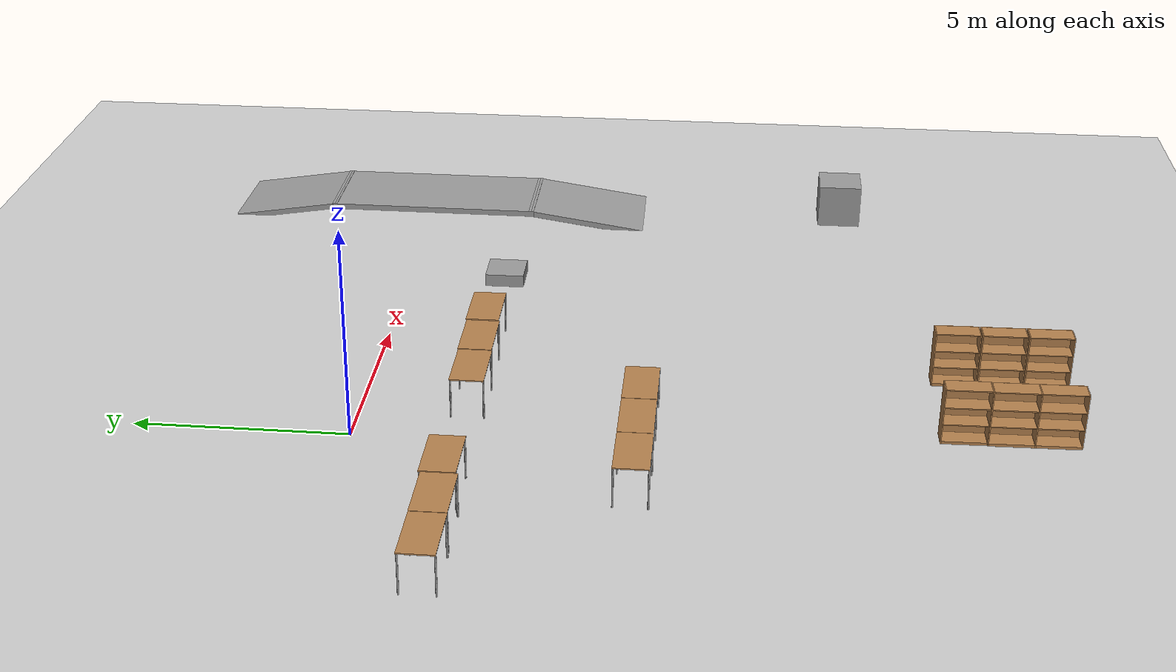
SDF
<sdf version="1.6">
 <world name="default">
  <model name="ground_plane">
   <static>1</static>
   <link name="link">
    <collision name="collision">
     <geometry><plane><normal>0 0 1</normal><size>100 100</size></plane></geometry>
     <surface><friction><ode><mu>100</mu><mu2>50</mu2></ode></friction></surface>
    </collision>
    <visual name="visual">
     <cast_shadows>0</cast_shadows>
     <geometry><plane><normal>0 0 1</normal><size>100 100</size></plane></geometry>
     <material>
      <script><uri>file://media/materials/scripts/gazebo.material</uri><name>Gazebo/Grey</name></script>
     </material>
    </visual>
   </link>
  </model>
  <model name="table">
   <static>1</static>
   <link name="link">
    <collision name="surface">
     <pose>0 0 1 0 -0 0</pose>
     <geometry><box><size>1.5 0.8 0.03</size></box></geometry>
     <surface><friction><ode><mu>0.6</mu><mu2>0.6</mu2></ode></friction></surface>
    </collision>
    <visual name="visual1">
     <pose>0 0 1 0 -0 0</pose>
     <geometry><box><size>1.5 0.8 0.03</size></box></geometry>
     <material>
      <script><uri>file://media/materials/scripts/gazebo.material</uri><name>Gazebo/Wood</name></script>
     </material>
    </visual>
    <collision name="front_left_leg">
     <pose>0.68 0.38 0.5 0 -0 0</pose>
     <geometry><cylinder><radius>0.02</radius><length>1</length></cylinder></geometry>
    </collision>
    <visual name="front_left_leg">
     <pose>0.68 0.38 0.5 0 -0 0</pose>
     <geometry><cylinder><radius>0.02</radius><length>1</length></cylinder></geometry>
     <material>
      <script><uri>file://media/materials/scripts/gazebo.material</uri><name>Gazebo/Grey</name></script>
     </material>
    </visual>
    <collision name="front_right_leg">
     <pose>0.68 -0.38 0.5 0 -0 0</pose>
     <geometry><cylinder><radius>0.02</radius><length>1</length></cylinder></geometry>
    </collision>
    <visual name="front_right_leg">
     <pose>0.68 -0.38 0.5 0 -0 0</pose>
     <geometry><cylinder><radius>0.02</radius><length>1</length></cylinder></geometry>
     <material>
      <script><uri>file://media/materials/scripts/gazebo.material</uri><name>Gazebo/Grey</name></script>
     </material>
    </visual>
    <collision name="back_right_leg">
     <pose>-0.68 -0.38 0.5 0 -0 0</pose>
     <geometry><cylinder><radius>0.02</radius><length>1</length></cylinder></geometry>
    </collision>
    <visual name="back_right_leg">
     <pose>-0.68 -0.38 0.5 0 -0 0</pose>
     <geometry><cylinder><radius>0.02</radius><length>1</length></cylinder></geometry>
     <material>
      <script><uri>file://media/materials/scripts/gazebo.material</uri><name>Gazebo/Grey</name></script>
     </material>
    </visual>
    <collision name="back_left_leg">
     <pose>-0.68 0.38 0.5 0 -0 0</pose>
     <geometry><cylinder><radius>0.02</radius><length>1</length></cylinder></geometry>
    </collision>
    <visual name="back_left_leg">
     <pose>-0.68 0.38 0.5 0 -0 0</pose>
     <geometry><cylinder><radius>0.02</radius><length>1</length></cylinder></geometry>
     <material>
      <script><uri>file://media/materials/scripts/gazebo.material</uri><name>Gazebo/Grey</name></script>
     </material>
    </visual>
   </link>
   <pose>-1.77581 -6.45658 0 0 -0 0</pose>
  </model>
  <model name="table_0">
   <static>1</static>
   <link name="link">
    <collision name="surface">
     <pose>0 0 1 0 -0 0</pose>
     <geometry><box><size>1.5 0.8 0.03</size></box></geometry>
     <surface><friction><ode><mu>0.6</mu><mu2>0.6</mu2></ode></friction></surface>
    </collision>
    <visual name="visual1">
     <pose>0 0 1 0 -0 0</pose>
     <geometry><box><size>1.5 0.8 0.03</size></box></geometry>
     <material>
      <script><uri>file://media/materials/scripts/gazebo.material</uri><name>Gazebo/Wood</name></script>
     </material>
    </visual>
    <collision name="front_left_leg">
     <pose>0.68 0.38 0.5 0 -0 0</pose>
     <geometry><cylinder><radius>0.02</radius><length>1</length></cylinder></geometry>
    </collision>
    <visual name="front_left_leg">
     <pose>0.68 0.38 0.5 0 -0 0</pose>
     <geometry><cylinder><radius>0.02</radius><length>1</length></cylinder></geometry>
     <material>
      <script><uri>file://media/materials/scripts/gazebo.material</uri><name>Gazebo/Grey</name></script>
     </material>
    </visual>
    <collision name="front_right_leg">
     <pose>0.68 -0.38 0.5 0 -0 0</pose>
     <geometry><cylinder><radius>0.02</radius><length>1</length></cylinder></geometry>
    </collision>
    <visual name="front_right_leg">
     <pose>0.68 -0.38 0.5 0 -0 0</pose>
     <geometry><cylinder><radius>0.02</radius><length>1</length></cylinder></geometry>
     <material>
      <script><uri>file://media/materials/scripts/gazebo.material</uri><name>Gazebo/Grey</name></script>
     </material>
    </visual>
    <collision name="back_right_leg">
     <pose>-0.68 -0.38 0.5 0 -0 0</pose>
     <geometry><cylinder><radius>0.02</radius><length>1</length></cylinder></geometry>
    </collision>
    <visual name="back_right_leg">
     <pose>-0.68 -0.38 0.5 0 -0 0</pose>
     <geometry><cylinder><radius>0.02</radius><length>1</length></cylinder></geometry>
     <material>
      <script><uri>file://media/materials/scripts/gazebo.material</uri><name>Gazebo/Grey</name></script>
     </material>
    </visual>
    <collision name="back_left_leg">
     <pose>-0.68 0.38 0.5 0 -0 0</pose>
     <geometry><cylinder><radius>0.02</radius><length>1</length></cylinder></geometry>
    </collision>
    <visual name="back_left_leg">
     <pose>-0.68 0.38 0.5 0 -0 0</pose>
     <geometry><cylinder><radius>0.02</radius><length>1</length></cylinder></geometry>
     <material>
      <script><uri>file://media/materials/scripts/gazebo.material</uri><name>Gazebo/Grey</name></script>
     </material>
    </visual>
   </link>
   <pose>-0.266949 -6.45533 0 0 -0 0</pose>
  </model>
  <model name="table_1">
   <static>1</static>
   <link name="link">
    <collision name="surface">
     <pose>0 0 1 0 -0 0</pose>
     <geometry><box><size>1.5 0.8 0.03</size></box></geometry>
     <surface><friction><ode><mu>0.6</mu><mu2>0.6</mu2></ode></friction></surface>
    </collision>
    <visual name="visual1">
     <pose>0 0 1 0 -0 0</pose>
     <geometry><box><size>1.5 0.8 0.03</size></box></geometry>
     <material>
      <script><uri>file://media/materials/scripts/gazebo.material</uri><name>Gazebo/Wood</name></script>
     </material>
    </visual>
    <collision name="front_left_leg">
     <pose>0.68 0.38 0.5 0 -0 0</pose>
     <geometry><cylinder><radius>0.02</radius><length>1</length></cylinder></geometry>
    </collision>
    <visual name="front_left_leg">
     <pose>0.68 0.38 0.5 0 -0 0</pose>
     <geometry><cylinder><radius>0.02</radius><length>1</length></cylinder></geometry>
     <material>
      <script><uri>file://media/materials/scripts/gazebo.material</uri><name>Gazebo/Grey</name></script>
     </material>
    </visual>
    <collision name="front_right_leg">
     <pose>0.68 -0.38 0.5 0 -0 0</pose>
     <geometry><cylinder><radius>0.02</radius><length>1</length></cylinder></geometry>
    </collision>
    <visual name="front_right_leg">
     <pose>0.68 -0.38 0.5 0 -0 0</pose>
     <geometry><cylinder><radius>0.02</radius><length>1</length></cylinder></geometry>
     <material>
      <script><uri>file://media/materials/scripts/gazebo.material</uri><name>Gazebo/Grey</name></script>
     </material>
    </visual>
    <collision name="back_right_leg">
     <pose>-0.68 -0.38 0.5 0 -0 0</pose>
     <geometry><cylinder><radius>0.02</radius><length>1</length></cylinder></geometry>
    </collision>
    <visual name="back_right_leg">
     <pose>-0.68 -0.38 0.5 0 -0 0</pose>
     <geometry><cylinder><radius>0.02</radius><length>1</length></cylinder></geometry>
     <material>
      <script><uri>file://media/materials/scripts/gazebo.material</uri><name>Gazebo/Grey</name></script>
     </material>
    </visual>
    <collision name="back_left_leg">
     <pose>-0.68 0.38 0.5 0 -0 0</pose>
     <geometry><cylinder><radius>0.02</radius><length>1</length></cylinder></geometry>
    </collision>
    <visual name="back_left_leg">
     <pose>-0.68 0.38 0.5 0 -0 0</pose>
     <geometry><cylinder><radius>0.02</radius><length>1</length></cylinder></geometry>
     <material>
      <script><uri>file://media/materials/scripts/gazebo.material</uri><name>Gazebo/Grey</name></script>
     </material>
    </visual>
   </link>
   <pose>1.24514 -6.45321 0 0 -0 0</pose>
  </model>
  <model name="unit_box_2">
   <pose>8.52634 -2.4941 0.158925 0 0 -5e-06</pose>
   <link name="link">
    <inertial>
     <mass>1</mass>
     <inertia>
      <ixx>0.166667</ixx>
      <ixy>0</ixy>
      <ixz>0</ixz>
      <iyy>0.166667</iyy>
      <iyz>0</iyz>
      <izz>0.166667</izz>
     </inertia>
    </inertial>
    <collision name="collision"><geometry><box><size>1 1 0.31785</size></box></geometry></collision>
    <visual name="visual">
     <geometry><box><size>1 1 0.31785</size></box></geometry>
     <material>
      <script><name>Gazebo/Grey</name><uri>file://media/materials/scripts/gazebo.material</uri></script>
     </material>
    </visual>
   </link>
  </model>
  <model name="table_14">
   <static>1</static>
   <link name="link">
    <collision name="surface">
     <pose>0 0 1 0 -0 0</pose>
     <geometry><box><size>1.5 0.8 0.03</size></box></geometry>
     <surface><friction><ode><mu>0.6</mu><mu2>0.6</mu2></ode></friction></surface>
    </collision>
    <visual name="visual1">
     <pose>0 0 1 0 -0 0</pose>
     <geometry><box><size>1.5 0.8 0.03</size></box></geometry>
     <material>
      <script><uri>file://media/materials/scripts/gazebo.material</uri><name>Gazebo/Wood</name></script>
     </material>
    </visual>
    <collision name="front_left_leg">
     <pose>0.68 0.38 0.5 0 -0 0</pose>
     <geometry><cylinder><radius>0.02</radius><length>1</length></cylinder></geometry>
    </collision>
    <visual name="front_left_leg">
     <pose>0.68 0.38 0.5 0 -0 0</pose>
     <geometry><cylinder><radius>0.02</radius><length>1</length></cylinder></geometry>
     <material>
      <script><uri>file://media/materials/scripts/gazebo.material</uri><name>Gazebo/Grey</name></script>
     </material>
    </visual>
    <collision name="front_right_leg">
     <pose>0.68 -0.38 0.5 0 -0 0</pose>
     <geometry><cylinder><radius>0.02</radius><length>1</length></cylinder></geometry>
    </collision>
    <visual name="front_right_leg">
     <pose>0.68 -0.38 0.5 0 -0 0</pose>
     <geometry><cylinder><radius>0.02</radius><length>1</length></cylinder></geometry>
     <material>
      <script><uri>file://media/materials/scripts/gazebo.material</uri><name>Gazebo/Grey</name></script>
     </material>
    </visual>
    <collision name="back_right_leg">
     <pose>-0.68 -0.38 0.5 0 -0 0</pose>
     <geometry><cylinder><radius>0.02</radius><length>1</length></cylinder></geometry>
    </collision>
    <visual name="back_right_leg">
     <pose>-0.68 -0.38 0.5 0 -0 0</pose>
     <geometry><cylinder><radius>0.02</radius><length>1</length></cylinder></geometry>
     <material>
      <script><uri>file://media/materials/scripts/gazebo.material</uri><name>Gazebo/Grey</name></script>
     </material>
    </visual>
    <collision name="back_left_leg">
     <pose>-0.68 0.38 0.5 0 -0 0</pose>
     <geometry><cylinder><radius>0.02</radius><length>1</length></cylinder></geometry>
    </collision>
    <visual name="back_left_leg">
     <pose>-0.68 0.38 0.5 0 -0 0</pose>
     <geometry><cylinder><radius>0.02</radius><length>1</length></cylinder></geometry>
     <material>
      <script><uri>file://media/materials/scripts/gazebo.material</uri><name>Gazebo/Grey</name></script>
     </material>
    </visual>
   </link>
   <pose>-5.32468 -2.52711 0 0 -0 0</pose>
  </model>
  <model name="table_15">
   <static>1</static>
   <link name="link">
    <collision name="surface">
     <pose>0 0 1 0 -0 0</pose>
     <geometry><box><size>1.5 0.8 0.03</size></box></geometry>
     <surface><friction><ode><mu>0.6</mu><mu2>0.6</mu2></ode></friction></surface>
    </collision>
    <visual name="visual1">
     <pose>0 0 1 0 -0 0</pose>
     <geometry><box><size>1.5 0.8 0.03</size></box></geometry>
     <material>
      <script><uri>file://media/materials/scripts/gazebo.material</uri><name>Gazebo/Wood</name></script>
     </material>
    </visual>
    <collision name="front_left_leg">
     <pose>0.68 0.38 0.5 0 -0 0</pose>
     <geometry><cylinder><radius>0.02</radius><length>1</length></cylinder></geometry>
    </collision>
    <visual name="front_left_leg">
     <pose>0.68 0.38 0.5 0 -0 0</pose>
     <geometry><cylinder><radius>0.02</radius><length>1</length></cylinder></geometry>
     <material>
      <script><uri>file://media/materials/scripts/gazebo.material</uri><name>Gazebo/Grey</name></script>
     </material>
    </visual>
    <collision name="front_right_leg">
     <pose>0.68 -0.38 0.5 0 -0 0</pose>
     <geometry><cylinder><radius>0.02</radius><length>1</length></cylinder></geometry>
    </collision>
    <visual name="front_right_leg">
     <pose>0.68 -0.38 0.5 0 -0 0</pose>
     <geometry><cylinder><radius>0.02</radius><length>1</length></cylinder></geometry>
     <material>
      <script><uri>file://media/materials/scripts/gazebo.material</uri><name>Gazebo/Grey</name></script>
     </material>
    </visual>
    <collision name="back_right_leg">
     <pose>-0.68 -0.38 0.5 0 -0 0</pose>
     <geometry><cylinder><radius>0.02</radius><length>1</length></cylinder></geometry>
    </collision>
    <visual name="back_right_leg">
     <pose>-0.68 -0.38 0.5 0 -0 0</pose>
     <geometry><cylinder><radius>0.02</radius><length>1</length></cylinder></geometry>
     <material>
      <script><uri>file://media/materials/scripts/gazebo.material</uri><name>Gazebo/Grey</name></script>
     </material>
    </visual>
    <collision name="back_left_leg">
     <pose>-0.68 0.38 0.5 0 -0 0</pose>
     <geometry><cylinder><radius>0.02</radius><length>1</length></cylinder></geometry>
    </collision>
    <visual name="back_left_leg">
     <pose>-0.68 0.38 0.5 0 -0 0</pose>
     <geometry><cylinder><radius>0.02</radius><length>1</length></cylinder></geometry>
     <material>
      <script><uri>file://media/materials/scripts/gazebo.material</uri><name>Gazebo/Grey</name></script>
     </material>
    </visual>
   </link>
   <pose>-3.80987 -2.52228 0 0 -0 0</pose>
  </model>
  <model name="table_16">
   <static>1</static>
   <link name="link">
    <collision name="surface">
     <pose>0 0 1 0 -0 0</pose>
     <geometry><box><size>1.5 0.8 0.03</size></box></geometry>
     <surface><friction><ode><mu>0.6</mu><mu2>0.6</mu2></ode></friction></surface>
    </collision>
    <visual name="visual1">
     <pose>0 0 1 0 -0 0</pose>
     <geometry><box><size>1.5 0.8 0.03</size></box></geometry>
     <material>
      <script><uri>file://media/materials/scripts/gazebo.material</uri><name>Gazebo/Wood</name></script>
     </material>
    </visual>
    <collision name="front_left_leg">
     <pose>0.68 0.38 0.5 0 -0 0</pose>
     <geometry><cylinder><radius>0.02</radius><length>1</length></cylinder></geometry>
    </collision>
    <visual name="front_left_leg">
     <pose>0.68 0.38 0.5 0 -0 0</pose>
     <geometry><cylinder><radius>0.02</radius><length>1</length></cylinder></geometry>
     <material>
      <script><uri>file://media/materials/scripts/gazebo.material</uri><name>Gazebo/Grey</name></script>
     </material>
    </visual>
    <collision name="front_right_leg">
     <pose>0.68 -0.38 0.5 0 -0 0</pose>
     <geometry><cylinder><radius>0.02</radius><length>1</length></cylinder></geometry>
    </collision>
    <visual name="front_right_leg">
     <pose>0.68 -0.38 0.5 0 -0 0</pose>
     <geometry><cylinder><radius>0.02</radius><length>1</length></cylinder></geometry>
     <material>
      <script><uri>file://media/materials/scripts/gazebo.material</uri><name>Gazebo/Grey</name></script>
     </material>
    </visual>
    <collision name="back_right_leg">
     <pose>-0.68 -0.38 0.5 0 -0 0</pose>
     <geometry><cylinder><radius>0.02</radius><length>1</length></cylinder></geometry>
    </collision>
    <visual name="back_right_leg">
     <pose>-0.68 -0.38 0.5 0 -0 0</pose>
     <geometry><cylinder><radius>0.02</radius><length>1</length></cylinder></geometry>
     <material>
      <script><uri>file://media/materials/scripts/gazebo.material</uri><name>Gazebo/Grey</name></script>
     </material>
    </visual>
    <collision name="back_left_leg">
     <pose>-0.68 0.38 0.5 0 -0 0</pose>
     <geometry><cylinder><radius>0.02</radius><length>1</length></cylinder></geometry>
    </collision>
    <visual name="back_left_leg">
     <pose>-0.68 0.38 0.5 0 -0 0</pose>
     <geometry><cylinder><radius>0.02</radius><length>1</length></cylinder></geometry>
     <material>
      <script><uri>file://media/materials/scripts/gazebo.material</uri><name>Gazebo/Grey</name></script>
     </material>
    </visual>
   </link>
   <pose>-2.27795 -2.46752 0 0 -0 0</pose>
  </model>
  <model name="table_17">
   <static>1</static>
   <link name="link">
    <collision name="surface">
     <pose>0 0 1 0 -0 0</pose>
     <geometry><box><size>1.5 0.8 0.03</size></box></geometry>
     <surface><friction><ode><mu>0.6</mu><mu2>0.6</mu2></ode></friction></surface>
    </collision>
    <visual name="visual1">
     <pose>0 0 1 0 -0 0</pose>
     <geometry><box><size>1.5 0.8 0.03</size></box></geometry>
     <material>
      <script><uri>file://media/materials/scripts/gazebo.material</uri><name>Gazebo/Wood</name></script>
     </material>
    </visual>
    <collision name="front_left_leg">
     <pose>0.68 0.38 0.5 0 -0 0</pose>
     <geometry><cylinder><radius>0.02</radius><length>1</length></cylinder></geometry>
    </collision>
    <visual name="front_left_leg">
     <pose>0.68 0.38 0.5 0 -0 0</pose>
     <geometry><cylinder><radius>0.02</radius><length>1</length></cylinder></geometry>
     <material>
      <script><uri>file://media/materials/scripts/gazebo.material</uri><name>Gazebo/Grey</name></script>
     </material>
    </visual>
    <collision name="front_right_leg">
     <pose>0.68 -0.38 0.5 0 -0 0</pose>
     <geometry><cylinder><radius>0.02</radius><length>1</length></cylinder></geometry>
    </collision>
    <visual name="front_right_leg">
     <pose>0.68 -0.38 0.5 0 -0 0</pose>
     <geometry><cylinder><radius>0.02</radius><length>1</length></cylinder></geometry>
     <material>
      <script><uri>file://media/materials/scripts/gazebo.material</uri><name>Gazebo/Grey</name></script>
     </material>
    </visual>
    <collision name="back_right_leg">
     <pose>-0.68 -0.38 0.5 0 -0 0</pose>
     <geometry><cylinder><radius>0.02</radius><length>1</length></cylinder></geometry>
    </collision>
    <visual name="back_right_leg">
     <pose>-0.68 -0.38 0.5 0 -0 0</pose>
     <geometry><cylinder><radius>0.02</radius><length>1</length></cylinder></geometry>
     <material>
      <script><uri>file://media/materials/scripts/gazebo.material</uri><name>Gazebo/Grey</name></script>
     </material>
    </visual>
    <collision name="back_left_leg">
     <pose>-0.68 0.38 0.5 0 -0 0</pose>
     <geometry><cylinder><radius>0.02</radius><length>1</length></cylinder></geometry>
    </collision>
    <visual name="back_left_leg">
     <pose>-0.68 0.38 0.5 0 -0 0</pose>
     <geometry><cylinder><radius>0.02</radius><length>1</length></cylinder></geometry>
     <material>
      <script><uri>file://media/materials/scripts/gazebo.material</uri><name>Gazebo/Grey</name></script>
     </material>
    </visual>
   </link>
   <pose>1.70252 -2.50955 0 0 -0 0</pose>
  </model>
  <model name="table_18">
   <static>1</static>
   <link name="link">
    <collision name="surface">
     <pose>0 0 1 0 -0 0</pose>
     <geometry><box><size>1.5 0.8 0.03</size></box></geometry>
     <surface><friction><ode><mu>0.6</mu><mu2>0.6</mu2></ode></friction></surface>
    </collision>
    <visual name="visual1">
     <pose>0 0 1 0 -0 0</pose>
     <geometry><box><size>1.5 0.8 0.03</size></box></geometry>
     <material>
      <script><uri>file://media/materials/scripts/gazebo.material</uri><name>Gazebo/Wood</name></script>
     </material>
    </visual>
    <collision name="front_left_leg">
     <pose>0.68 0.38 0.5 0 -0 0</pose>
     <geometry><cylinder><radius>0.02</radius><length>1</length></cylinder></geometry>
    </collision>
    <visual name="front_left_leg">
     <pose>0.68 0.38 0.5 0 -0 0</pose>
     <geometry><cylinder><radius>0.02</radius><length>1</length></cylinder></geometry>
     <material>
      <script><uri>file://media/materials/scripts/gazebo.material</uri><name>Gazebo/Grey</name></script>
     </material>
    </visual>
    <collision name="front_right_leg">
     <pose>0.68 -0.38 0.5 0 -0 0</pose>
     <geometry><cylinder><radius>0.02</radius><length>1</length></cylinder></geometry>
    </collision>
    <visual name="front_right_leg">
     <pose>0.68 -0.38 0.5 0 -0 0</pose>
     <geometry><cylinder><radius>0.02</radius><length>1</length></cylinder></geometry>
     <material>
      <script><uri>file://media/materials/scripts/gazebo.material</uri><name>Gazebo/Grey</name></script>
     </material>
    </visual>
    <collision name="back_right_leg">
     <pose>-0.68 -0.38 0.5 0 -0 0</pose>
     <geometry><cylinder><radius>0.02</radius><length>1</length></cylinder></geometry>
    </collision>
    <visual name="back_right_leg">
     <pose>-0.68 -0.38 0.5 0 -0 0</pose>
     <geometry><cylinder><radius>0.02</radius><length>1</length></cylinder></geometry>
     <material>
      <script><uri>file://media/materials/scripts/gazebo.material</uri><name>Gazebo/Grey</name></script>
     </material>
    </visual>
    <collision name="back_left_leg">
     <pose>-0.68 0.38 0.5 0 -0 0</pose>
     <geometry><cylinder><radius>0.02</radius><length>1</length></cylinder></geometry>
    </collision>
    <visual name="back_left_leg">
     <pose>-0.68 0.38 0.5 0 -0 0</pose>
     <geometry><cylinder><radius>0.02</radius><length>1</length></cylinder></geometry>
     <material>
      <script><uri>file://media/materials/scripts/gazebo.material</uri><name>Gazebo/Grey</name></script>
     </material>
    </visual>
   </link>
   <pose>3.23348 -2.49164 0 0 -0 0</pose>
  </model>
  <model name="table_19">
   <static>1</static>
   <link name="link">
    <collision name="surface">
     <pose>0 0 1 0 -0 0</pose>
     <geometry><box><size>1.5 0.8 0.03</size></box></geometry>
     <surface><friction><ode><mu>0.6</mu><mu2>0.6</mu2></ode></friction></surface>
    </collision>
    <visual name="visual1">
     <pose>0 0 1 0 -0 0</pose>
     <geometry><box><size>1.5 0.8 0.03</size></box></geometry>
     <material>
      <script><uri>file://media/materials/scripts/gazebo.material</uri><name>Gazebo/Wood</name></script>
     </material>
    </visual>
    <collision name="front_left_leg">
     <pose>0.68 0.38 0.5 0 -0 0</pose>
     <geometry><cylinder><radius>0.02</radius><length>1</length></cylinder></geometry>
    </collision>
    <visual name="front_left_leg">
     <pose>0.68 0.38 0.5 0 -0 0</pose>
     <geometry><cylinder><radius>0.02</radius><length>1</length></cylinder></geometry>
     <material>
      <script><uri>file://media/materials/scripts/gazebo.material</uri><name>Gazebo/Grey</name></script>
     </material>
    </visual>
    <collision name="front_right_leg">
     <pose>0.68 -0.38 0.5 0 -0 0</pose>
     <geometry><cylinder><radius>0.02</radius><length>1</length></cylinder></geometry>
    </collision>
    <visual name="front_right_leg">
     <pose>0.68 -0.38 0.5 0 -0 0</pose>
     <geometry><cylinder><radius>0.02</radius><length>1</length></cylinder></geometry>
     <material>
      <script><uri>file://media/materials/scripts/gazebo.material</uri><name>Gazebo/Grey</name></script>
     </material>
    </visual>
    <collision name="back_right_leg">
     <pose>-0.68 -0.38 0.5 0 -0 0</pose>
     <geometry><cylinder><radius>0.02</radius><length>1</length></cylinder></geometry>
    </collision>
    <visual name="back_right_leg">
     <pose>-0.68 -0.38 0.5 0 -0 0</pose>
     <geometry><cylinder><radius>0.02</radius><length>1</length></cylinder></geometry>
     <material>
      <script><uri>file://media/materials/scripts/gazebo.material</uri><name>Gazebo/Grey</name></script>
     </material>
    </visual>
    <collision name="back_left_leg">
     <pose>-0.68 0.38 0.5 0 -0 0</pose>
     <geometry><cylinder><radius>0.02</radius><length>1</length></cylinder></geometry>
    </collision>
    <visual name="back_left_leg">
     <pose>-0.68 0.38 0.5 0 -0 0</pose>
     <geometry><cylinder><radius>0.02</radius><length>1</length></cylinder></geometry>
     <material>
      <script><uri>file://media/materials/scripts/gazebo.material</uri><name>Gazebo/Grey</name></script>
     </material>
    </visual>
   </link>
   <pose>4.78899 -2.46187 0 0 -0 0</pose>
  </model>
  <model name="bookshelf_clone_clone_clone_17">
   <static>1</static>
   <link name="link">
    <inertial><mass>1</mass></inertial>
    <collision name="back">
     <pose>0 0.005 0.6 0 -0 0</pose>
     <geometry><box><size>0.9 0.01 1.2</size></box></geometry>
    </collision>
    <visual name="visual1">
     <pose>0 0.005 0.6 0 -0 0</pose>
     <geometry><box><size>0.9 0.01 1.2</size></box></geometry>
     <material>
      <script><uri>file://media/materials/scripts/gazebo.material</uri><name>Gazebo/Wood</name></script>
     </material>
    </visual>
    <collision name="left_side">
     <pose>0.45 -0.195 0.6 0 -0 0</pose>
     <geometry><box><size>0.02 0.4 1.2</size></box></geometry>
    </collision>
    <visual name="visual2">
     <pose>0.45 -0.195 0.6 0 -0 0</pose>
     <geometry><box><size>0.02 0.4 1.2</size></box></geometry>
     <material>
      <script><uri>file://media/materials/scripts/gazebo.material</uri><name>Gazebo/Wood</name></script>
     </material>
    </visual>
    <collision name="right_side">
     <pose>-0.45 -0.195 0.6 0 -0 0</pose>
     <geometry><box><size>0.02 0.4 1.2</size></box></geometry>
    </collision>
    <visual name="visual3">
     <pose>-0.45 -0.195 0.6 0 -0 0</pose>
     <geometry><box><size>0.02 0.4 1.2</size></box></geometry>
     <material>
      <script><uri>file://media/materials/scripts/gazebo.material</uri><name>Gazebo/Wood</name></script>
     </material>
    </visual>
    <collision name="bottom">
     <pose>0 -0.195 0.03 0 -0 0</pose>
     <geometry><box><size>0.88 0.4 0.06</size></box></geometry>
    </collision>
    <visual name="visual4">
     <pose>0 -0.195 0.03 0 -0 0</pose>
     <geometry><box><size>0.88 0.4 0.06</size></box></geometry>
     <material>
      <script><uri>file://media/materials/scripts/gazebo.material</uri><name>Gazebo/Wood</name></script>
     </material>
    </visual>
    <collision name="top">
     <pose>0 -0.195 1.19 0 -0 0</pose>
     <geometry><box><size>0.88 0.4 0.02</size></box></geometry>
    </collision>
    <visual name="visual5">
     <pose>0 -0.195 1.19 0 -0 0</pose>
     <geometry><box><size>0.88 0.4 0.02</size></box></geometry>
     <material>
      <script><uri>file://media/materials/scripts/gazebo.material</uri><name>Gazebo/Wood</name></script>
     </material>
    </visual>
    <collision name="low_shelf">
     <pose>0 -0.195 0.43 0 -0 0</pose>
     <geometry><box><size>0.88 0.4 0.02</size></box></geometry>
    </collision>
    <visual name="visual6">
     <pose>0 -0.195 0.43 0 -0 0</pose>
     <geometry><box><size>0.88 0.4 0.02</size></box></geometry>
     <material>
      <script><uri>file://media/materials/scripts/gazebo.material</uri><name>Gazebo/Wood</name></script>
     </material>
    </visual>
    <collision name="high_shelf">
     <pose>0 -0.195 0.8 0 -0 0</pose>
     <geometry><box><size>0.88 0.4 0.02</size></box></geometry>
    </collision>
    <visual name="visual7">
     <pose>0 -0.195 0.8 0 -0 0</pose>
     <geometry><box><size>0.88 0.4 0.02</size></box></geometry>
     <material>
      <script><uri>file://media/materials/scripts/gazebo.material</uri><name>Gazebo/Wood</name></script>
     </material>
    </visual>
    <enable_wind>1</enable_wind>
   </link>
   <pose>-3.23164 -12.9838 2.61718 0 0 -1.55468</pose>
   <enable_wind>1</enable_wind>
  </model>
  <model name="bookshelf_clone_clone_clone_18">
   <static>1</static>
   <link name="link">
    <inertial><mass>1</mass></inertial>
    <collision name="back">
     <pose>0 0.005 0.6 0 -0 0</pose>
     <geometry><box><size>0.9 0.01 1.2</size></box></geometry>
    </collision>
    <visual name="visual1">
     <pose>0 0.005 0.6 0 -0 0</pose>
     <geometry><box><size>0.9 0.01 1.2</size></box></geometry>
     <material>
      <script><uri>file://media/materials/scripts/gazebo.material</uri><name>Gazebo/Wood</name></script>
     </material>
    </visual>
    <collision name="left_side">
     <pose>0.45 -0.195 0.6 0 -0 0</pose>
     <geometry><box><size>0.02 0.4 1.2</size></box></geometry>
    </collision>
    <visual name="visual2">
     <pose>0.45 -0.195 0.6 0 -0 0</pose>
     <geometry><box><size>0.02 0.4 1.2</size></box></geometry>
     <material>
      <script><uri>file://media/materials/scripts/gazebo.material</uri><name>Gazebo/Wood</name></script>
     </material>
    </visual>
    <collision name="right_side">
     <pose>-0.45 -0.195 0.6 0 -0 0</pose>
     <geometry><box><size>0.02 0.4 1.2</size></box></geometry>
    </collision>
    <visual name="visual3">
     <pose>-0.45 -0.195 0.6 0 -0 0</pose>
     <geometry><box><size>0.02 0.4 1.2</size></box></geometry>
     <material>
      <script><uri>file://media/materials/scripts/gazebo.material</uri><name>Gazebo/Wood</name></script>
     </material>
    </visual>
    <collision name="bottom">
     <pose>0 -0.195 0.03 0 -0 0</pose>
     <geometry><box><size>0.88 0.4 0.06</size></box></geometry>
    </collision>
    <visual name="visual4">
     <pose>0 -0.195 0.03 0 -0 0</pose>
     <geometry><box><size>0.88 0.4 0.06</size></box></geometry>
     <material>
      <script><uri>file://media/materials/scripts/gazebo.material</uri><name>Gazebo/Wood</name></script>
     </material>
    </visual>
    <collision name="top">
     <pose>0 -0.195 1.19 0 -0 0</pose>
     <geometry><box><size>0.88 0.4 0.02</size></box></geometry>
    </collision>
    <visual name="visual5">
     <pose>0 -0.195 1.19 0 -0 0</pose>
     <geometry><box><size>0.88 0.4 0.02</size></box></geometry>
     <material>
      <script><uri>file://media/materials/scripts/gazebo.material</uri><name>Gazebo/Wood</name></script>
     </material>
    </visual>
    <collision name="low_shelf">
     <pose>0 -0.195 0.43 0 -0 0</pose>
     <geometry><box><size>0.88 0.4 0.02</size></box></geometry>
    </collision>
    <visual name="visual6">
     <pose>0 -0.195 0.43 0 -0 0</pose>
     <geometry><box><size>0.88 0.4 0.02</size></box></geometry>
     <material>
      <script><uri>file://media/materials/scripts/gazebo.material</uri><name>Gazebo/Wood</name></script>
     </material>
    </visual>
    <collision name="high_shelf">
     <pose>0 -0.195 0.8 0 -0 0</pose>
     <geometry><box><size>0.88 0.4 0.02</size></box></geometry>
    </collision>
    <visual name="visual7">
     <pose>0 -0.195 0.8 0 -0 0</pose>
     <geometry><box><size>0.88 0.4 0.02</size></box></geometry>
     <material>
      <script><uri>file://media/materials/scripts/gazebo.material</uri><name>Gazebo/Wood</name></script>
     </material>
    </visual>
    <enable_wind>1</enable_wind>
   </link>
   <pose>-3.23274 -13.8968 2.61718 0 0 -1.55468</pose>
   <enable_wind>1</enable_wind>
  </model>
  <model name="bookshelf_clone_clone_clone_19">
   <static>1</static>
   <link name="link">
    <inertial><mass>1</mass></inertial>
    <collision name="back">
     <pose>0 0.005 0.6 0 -0 0</pose>
     <geometry><box><size>0.9 0.01 1.2</size></box></geometry>
    </collision>
    <visual name="visual1">
     <pose>0 0.005 0.6 0 -0 0</pose>
     <geometry><box><size>0.9 0.01 1.2</size></box></geometry>
     <material>
      <script><uri>file://media/materials/scripts/gazebo.material</uri><name>Gazebo/Wood</name></script>
     </material>
    </visual>
    <collision name="left_side">
     <pose>0.45 -0.195 0.6 0 -0 0</pose>
     <geometry><box><size>0.02 0.4 1.2</size></box></geometry>
    </collision>
    <visual name="visual2">
     <pose>0.45 -0.195 0.6 0 -0 0</pose>
     <geometry><box><size>0.02 0.4 1.2</size></box></geometry>
     <material>
      <script><uri>file://media/materials/scripts/gazebo.material</uri><name>Gazebo/Wood</name></script>
     </material>
    </visual>
    <collision name="right_side">
     <pose>-0.45 -0.195 0.6 0 -0 0</pose>
     <geometry><box><size>0.02 0.4 1.2</size></box></geometry>
    </collision>
    <visual name="visual3">
     <pose>-0.45 -0.195 0.6 0 -0 0</pose>
     <geometry><box><size>0.02 0.4 1.2</size></box></geometry>
     <material>
      <script><uri>file://media/materials/scripts/gazebo.material</uri><name>Gazebo/Wood</name></script>
     </material>
    </visual>
    <collision name="bottom">
     <pose>0 -0.195 0.03 0 -0 0</pose>
     <geometry><box><size>0.88 0.4 0.06</size></box></geometry>
    </collision>
    <visual name="visual4">
     <pose>0 -0.195 0.03 0 -0 0</pose>
     <geometry><box><size>0.88 0.4 0.06</size></box></geometry>
     <material>
      <script><uri>file://media/materials/scripts/gazebo.material</uri><name>Gazebo/Wood</name></script>
     </material>
    </visual>
    <collision name="top">
     <pose>0 -0.195 1.19 0 -0 0</pose>
     <geometry><box><size>0.88 0.4 0.02</size></box></geometry>
    </collision>
    <visual name="visual5">
     <pose>0 -0.195 1.19 0 -0 0</pose>
     <geometry><box><size>0.88 0.4 0.02</size></box></geometry>
     <material>
      <script><uri>file://media/materials/scripts/gazebo.material</uri><name>Gazebo/Wood</name></script>
     </material>
    </visual>
    <collision name="low_shelf">
     <pose>0 -0.195 0.43 0 -0 0</pose>
     <geometry><box><size>0.88 0.4 0.02</size></box></geometry>
    </collision>
    <visual name="visual6">
     <pose>0 -0.195 0.43 0 -0 0</pose>
     <geometry><box><size>0.88 0.4 0.02</size></box></geometry>
     <material>
      <script><uri>file://media/materials/scripts/gazebo.material</uri><name>Gazebo/Wood</name></script>
     </material>
    </visual>
    <collision name="high_shelf">
     <pose>0 -0.195 0.8 0 -0 0</pose>
     <geometry><box><size>0.88 0.4 0.02</size></box></geometry>
    </collision>
    <visual name="visual7">
     <pose>0 -0.195 0.8 0 -0 0</pose>
     <geometry><box><size>0.88 0.4 0.02</size></box></geometry>
     <material>
      <script><uri>file://media/materials/scripts/gazebo.material</uri><name>Gazebo/Wood</name></script>
     </material>
    </visual>
    <enable_wind>1</enable_wind>
   </link>
   <pose>-3.22009 -14.8011 2.61718 0 0 -1.55468</pose>
   <enable_wind>1</enable_wind>
  </model>
  <model name="bookshelf_clone_7">
   <static>1</static>
   <link name="link">
    <inertial><mass>1</mass></inertial>
    <collision name="back">
     <pose>0 0.005 0.6 0 -0 0</pose>
     <geometry><box><size>0.9 0.01 1.2</size></box></geometry>
    </collision>
    <visual name="visual1">
     <pose>0 0.005 0.6 0 -0 0</pose>
     <geometry><box><size>0.9 0.01 1.2</size></box></geometry>
     <material>
      <script><uri>file://media/materials/scripts/gazebo.material</uri><name>Gazebo/Wood</name></script>
     </material>
    </visual>
    <collision name="left_side">
     <pose>0.45 -0.195 0.6 0 -0 0</pose>
     <geometry><box><size>0.02 0.4 1.2</size></box></geometry>
    </collision>
    <visual name="visual2">
     <pose>0.45 -0.195 0.6 0 -0 0</pose>
     <geometry><box><size>0.02 0.4 1.2</size></box></geometry>
     <material>
      <script><uri>file://media/materials/scripts/gazebo.material</uri><name>Gazebo/Wood</name></script>
     </material>
    </visual>
    <collision name="right_side">
     <pose>-0.45 -0.195 0.6 0 -0 0</pose>
     <geometry><box><size>0.02 0.4 1.2</size></box></geometry>
    </collision>
    <visual name="visual3">
     <pose>-0.45 -0.195 0.6 0 -0 0</pose>
     <geometry><box><size>0.02 0.4 1.2</size></box></geometry>
     <material>
      <script><uri>file://media/materials/scripts/gazebo.material</uri><name>Gazebo/Wood</name></script>
     </material>
    </visual>
    <collision name="bottom">
     <pose>0 -0.195 0.03 0 -0 0</pose>
     <geometry><box><size>0.88 0.4 0.06</size></box></geometry>
    </collision>
    <visual name="visual4">
     <pose>0 -0.195 0.03 0 -0 0</pose>
     <geometry><box><size>0.88 0.4 0.06</size></box></geometry>
     <material>
      <script><uri>file://media/materials/scripts/gazebo.material</uri><name>Gazebo/Wood</name></script>
     </material>
    </visual>
    <collision name="top">
     <pose>0 -0.195 1.19 0 -0 0</pose>
     <geometry><box><size>0.88 0.4 0.02</size></box></geometry>
    </collision>
    <visual name="visual5">
     <pose>0 -0.195 1.19 0 -0 0</pose>
     <geometry><box><size>0.88 0.4 0.02</size></box></geometry>
     <material>
      <script><uri>file://media/materials/scripts/gazebo.material</uri><name>Gazebo/Wood</name></script>
     </material>
    </visual>
    <collision name="low_shelf">
     <pose>0 -0.195 0.43 0 -0 0</pose>
     <geometry><box><size>0.88 0.4 0.02</size></box></geometry>
    </collision>
    <visual name="visual6">
     <pose>0 -0.195 0.43 0 -0 0</pose>
     <geometry><box><size>0.88 0.4 0.02</size></box></geometry>
     <material>
      <script><uri>file://media/materials/scripts/gazebo.material</uri><name>Gazebo/Wood</name></script>
     </material>
    </visual>
    <collision name="high_shelf">
     <pose>0 -0.195 0.8 0 -0 0</pose>
     <geometry><box><size>0.88 0.4 0.02</size></box></geometry>
    </collision>
    <visual name="visual7">
     <pose>0 -0.195 0.8 0 -0 0</pose>
     <geometry><box><size>0.88 0.4 0.02</size></box></geometry>
     <material>
      <script><uri>file://media/materials/scripts/gazebo.material</uri><name>Gazebo/Wood</name></script>
     </material>
    </visual>
    <enable_wind>1</enable_wind>
   </link>
   <pose>-0.858278 -12.9994 2.61718 0 0 -1.55468</pose>
   <enable_wind>1</enable_wind>
  </model>
  <model name="bookshelf_clone_8">
   <static>1</static>
   <link name="link">
    <inertial><mass>1</mass></inertial>
    <collision name="back">
     <pose>0 0.005 0.6 0 -0 0</pose>
     <geometry><box><size>0.9 0.01 1.2</size></box></geometry>
    </collision>
    <visual name="visual1">
     <pose>0 0.005 0.6 0 -0 0</pose>
     <geometry><box><size>0.9 0.01 1.2</size></box></geometry>
     <material>
      <script><uri>file://media/materials/scripts/gazebo.material</uri><name>Gazebo/Wood</name></script>
     </material>
    </visual>
    <collision name="left_side">
     <pose>0.45 -0.195 0.6 0 -0 0</pose>
     <geometry><box><size>0.02 0.4 1.2</size></box></geometry>
    </collision>
    <visual name="visual2">
     <pose>0.45 -0.195 0.6 0 -0 0</pose>
     <geometry><box><size>0.02 0.4 1.2</size></box></geometry>
     <material>
      <script><uri>file://media/materials/scripts/gazebo.material</uri><name>Gazebo/Wood</name></script>
     </material>
    </visual>
    <collision name="right_side">
     <pose>-0.45 -0.195 0.6 0 -0 0</pose>
     <geometry><box><size>0.02 0.4 1.2</size></box></geometry>
    </collision>
    <visual name="visual3">
     <pose>-0.45 -0.195 0.6 0 -0 0</pose>
     <geometry><box><size>0.02 0.4 1.2</size></box></geometry>
     <material>
      <script><uri>file://media/materials/scripts/gazebo.material</uri><name>Gazebo/Wood</name></script>
     </material>
    </visual>
    <collision name="bottom">
     <pose>0 -0.195 0.03 0 -0 0</pose>
     <geometry><box><size>0.88 0.4 0.06</size></box></geometry>
    </collision>
    <visual name="visual4">
     <pose>0 -0.195 0.03 0 -0 0</pose>
     <geometry><box><size>0.88 0.4 0.06</size></box></geometry>
     <material>
      <script><uri>file://media/materials/scripts/gazebo.material</uri><name>Gazebo/Wood</name></script>
     </material>
    </visual>
    <collision name="top">
     <pose>0 -0.195 1.19 0 -0 0</pose>
     <geometry><box><size>0.88 0.4 0.02</size></box></geometry>
    </collision>
    <visual name="visual5">
     <pose>0 -0.195 1.19 0 -0 0</pose>
     <geometry><box><size>0.88 0.4 0.02</size></box></geometry>
     <material>
      <script><uri>file://media/materials/scripts/gazebo.material</uri><name>Gazebo/Wood</name></script>
     </material>
    </visual>
    <collision name="low_shelf">
     <pose>0 -0.195 0.43 0 -0 0</pose>
     <geometry><box><size>0.88 0.4 0.02</size></box></geometry>
    </collision>
    <visual name="visual6">
     <pose>0 -0.195 0.43 0 -0 0</pose>
     <geometry><box><size>0.88 0.4 0.02</size></box></geometry>
     <material>
      <script><uri>file://media/materials/scripts/gazebo.material</uri><name>Gazebo/Wood</name></script>
     </material>
    </visual>
    <collision name="high_shelf">
     <pose>0 -0.195 0.8 0 -0 0</pose>
     <geometry><box><size>0.88 0.4 0.02</size></box></geometry>
    </collision>
    <visual name="visual7">
     <pose>0 -0.195 0.8 0 -0 0</pose>
     <geometry><box><size>0.88 0.4 0.02</size></box></geometry>
     <material>
      <script><uri>file://media/materials/scripts/gazebo.material</uri><name>Gazebo/Wood</name></script>
     </material>
    </visual>
    <enable_wind>1</enable_wind>
   </link>
   <pose>-0.844687 -13.9417 2.61718 0 0 -1.55468</pose>
   <enable_wind>1</enable_wind>
  </model>
  <model name="bookshelf_clone_9">
   <static>1</static>
   <link name="link">
    <inertial><mass>1</mass></inertial>
    <collision name="back">
     <pose>0 0.005 0.6 0 -0 0</pose>
     <geometry><box><size>0.9 0.01 1.2</size></box></geometry>
    </collision>
    <visual name="visual1">
     <pose>0 0.005 0.6 0 -0 0</pose>
     <geometry><box><size>0.9 0.01 1.2</size></box></geometry>
     <material>
      <script><uri>file://media/materials/scripts/gazebo.material</uri><name>Gazebo/Wood</name></script>
     </material>
    </visual>
    <collision name="left_side">
     <pose>0.45 -0.195 0.6 0 -0 0</pose>
     <geometry><box><size>0.02 0.4 1.2</size></box></geometry>
    </collision>
    <visual name="visual2">
     <pose>0.45 -0.195 0.6 0 -0 0</pose>
     <geometry><box><size>0.02 0.4 1.2</size></box></geometry>
     <material>
      <script><uri>file://media/materials/scripts/gazebo.material</uri><name>Gazebo/Wood</name></script>
     </material>
    </visual>
    <collision name="right_side">
     <pose>-0.45 -0.195 0.6 0 -0 0</pose>
     <geometry><box><size>0.02 0.4 1.2</size></box></geometry>
    </collision>
    <visual name="visual3">
     <pose>-0.45 -0.195 0.6 0 -0 0</pose>
     <geometry><box><size>0.02 0.4 1.2</size></box></geometry>
     <material>
      <script><uri>file://media/materials/scripts/gazebo.material</uri><name>Gazebo/Wood</name></script>
     </material>
    </visual>
    <collision name="bottom">
     <pose>0 -0.195 0.03 0 -0 0</pose>
     <geometry><box><size>0.88 0.4 0.06</size></box></geometry>
    </collision>
    <visual name="visual4">
     <pose>0 -0.195 0.03 0 -0 0</pose>
     <geometry><box><size>0.88 0.4 0.06</size></box></geometry>
     <material>
      <script><uri>file://media/materials/scripts/gazebo.material</uri><name>Gazebo/Wood</name></script>
     </material>
    </visual>
    <collision name="top">
     <pose>0 -0.195 1.19 0 -0 0</pose>
     <geometry><box><size>0.88 0.4 0.02</size></box></geometry>
    </collision>
    <visual name="visual5">
     <pose>0 -0.195 1.19 0 -0 0</pose>
     <geometry><box><size>0.88 0.4 0.02</size></box></geometry>
     <material>
      <script><uri>file://media/materials/scripts/gazebo.material</uri><name>Gazebo/Wood</name></script>
     </material>
    </visual>
    <collision name="low_shelf">
     <pose>0 -0.195 0.43 0 -0 0</pose>
     <geometry><box><size>0.88 0.4 0.02</size></box></geometry>
    </collision>
    <visual name="visual6">
     <pose>0 -0.195 0.43 0 -0 0</pose>
     <geometry><box><size>0.88 0.4 0.02</size></box></geometry>
     <material>
      <script><uri>file://media/materials/scripts/gazebo.material</uri><name>Gazebo/Wood</name></script>
     </material>
    </visual>
    <collision name="high_shelf">
     <pose>0 -0.195 0.8 0 -0 0</pose>
     <geometry><box><size>0.88 0.4 0.02</size></box></geometry>
    </collision>
    <visual name="visual7">
     <pose>0 -0.195 0.8 0 -0 0</pose>
     <geometry><box><size>0.88 0.4 0.02</size></box></geometry>
     <material>
      <script><uri>file://media/materials/scripts/gazebo.material</uri><name>Gazebo/Wood</name></script>
     </material>
    </visual>
    <enable_wind>1</enable_wind>
   </link>
   <pose>-0.832241 -14.8832 2.61718 0 0 -1.55468</pose>
   <enable_wind>1</enable_wind>
  </model>
  <model name="unit_box_4">
   <pose>7.38154 -10.9576 3.1 -4e-06 -0 -2.2e-05</pose>
   <link name="link">
    <inertial>
     <mass>1</mass>
     <inertia>
      <ixx>0.166667</ixx>
      <ixy>0</ixy>
      <ixz>0</ixz>
      <iyy>0.166667</iyy>
      <iyz>0</iyz>
      <izz>0.166667</izz>
     </inertia>
    </inertial>
    <collision name="collision"><geometry><box><size>1 1 1</size></box></geometry></collision>
    <visual name="visual">
     <geometry><box><size>1 1 1</size></box></geometry>
     <material>
      <script><name>Gazebo/Grey</name><uri>file://media/materials/scripts/gazebo.material</uri></script>
     </material>
    </visual>
   </link>
  </model>
  <model name="steephill">
   <pose>12.0837 -0.106848 0.082397 -1.57318 -0 -1.57531</pose>
   <link name="Wall_13">
    <collision name="Wall_13_Collision">
     <geometry><box><size>12.75 0.15 2.5</size></box></geometry>
     <pose>0 0 1.25 0 -0 0</pose>
    </collision>
    <visual name="Wall_13_Visual">
     <pose>0 0 1.25 0 -0 0</pose>
     <geometry><box><size>12.75 0.15 2.5</size></box></geometry>
     <material>
      <script><uri>file://media/materials/scripts/gazebo.material</uri><name>Gazebo/Grey</name></script>
      <ambient>1 1 1 1</ambient>
     </material>
     <meta><layer>0</layer></meta>
    </visual>
    <pose>0.000423 0.261372 0 0 -0 0</pose>
   </link>
   <link name="Wall_18">
    <collision name="Wall_18_Collision">
     <geometry><box><size>5.75 0.15 2.5</size></box></geometry>
     <pose>0 0 1.25 0 -0 0</pose>
    </collision>
    <visual name="Wall_18_Visual">
     <pose>0 0 1.25 0 -0 0</pose>
     <geometry><box><size>5.75 0.15 2.5</size></box></geometry>
     <material>
      <script><uri>file://media/materials/scripts/gazebo.material</uri><name>Gazebo/Grey</name></script>
      <ambient>1 1 1 1</ambient>
     </material>
     <meta><layer>0</layer></meta>
    </visual>
    <pose>-0.160002 -0.261372 0 0 -0 0</pose>
   </link>
   <link name="Wall_19">
    <collision name="Wall_19_Collision">
     <geometry><box><size>3.84756 0.15 2.5</size></box></geometry>
     <pose>0 0 1.25 0 -0 0</pose>
    </collision>
    <visual name="Wall_19_Visual">
     <pose>0 0 1.25 0 -0 0</pose>
     <geometry><box><size>3.84756 0.15 2.5</size></box></geometry>
     <material>
      <script><uri>file://media/materials/scripts/gazebo.material</uri><name>Gazebo/Grey</name></script>
      <ambient>1 1 1 1</ambient>
     </material>
     <meta><layer>0</layer></meta>
    </visual>
    <pose>4.47021 0 0 0 -0 0.141851</pose>
   </link>
   <link name="Wall_21">
    <collision name="Wall_21_Collision">
     <geometry><box><size>3.53024 0.15 2.5</size></box></geometry>
     <pose>0 0 1.25 0 -0 0</pose>
    </collision>
    <visual name="Wall_21_Visual">
     <pose>0 0 1.25 0 -0 0</pose>
     <geometry><box><size>3.53024 0.15 2.5</size></box></geometry>
     <material>
      <script><uri>file://media/materials/scripts/gazebo.material</uri><name>Gazebo/Grey</name></script>
      <ambient>1 1 1 1</ambient>
     </material>
     <meta><layer>0</layer></meta>
    </visual>
    <pose>-4.62979 0 0 0 -0 2.98632</pose>
   </link>
   <static>1</static>
  </model>
 </world>
</sdf>
